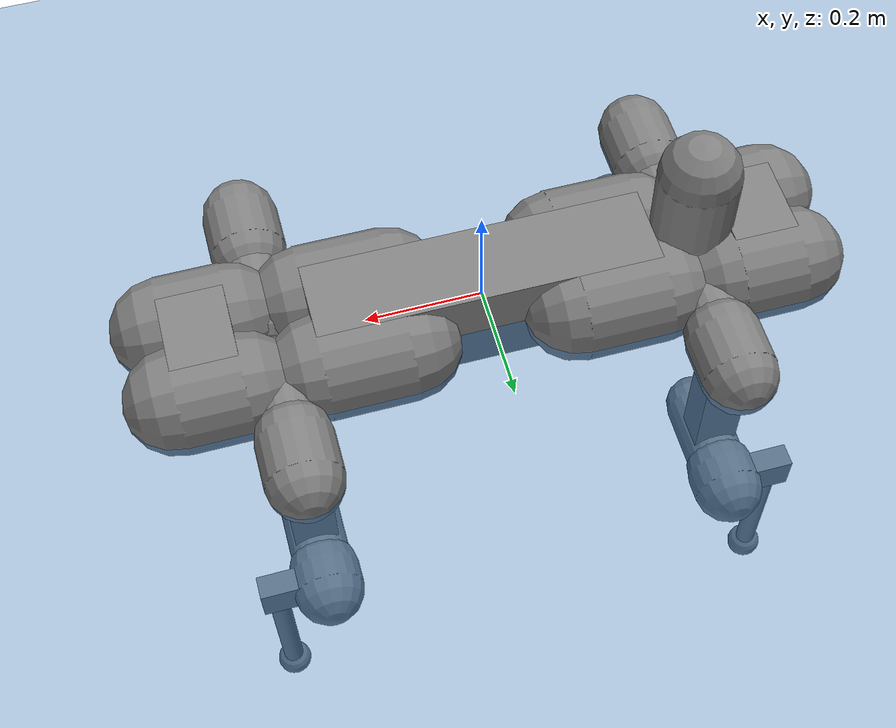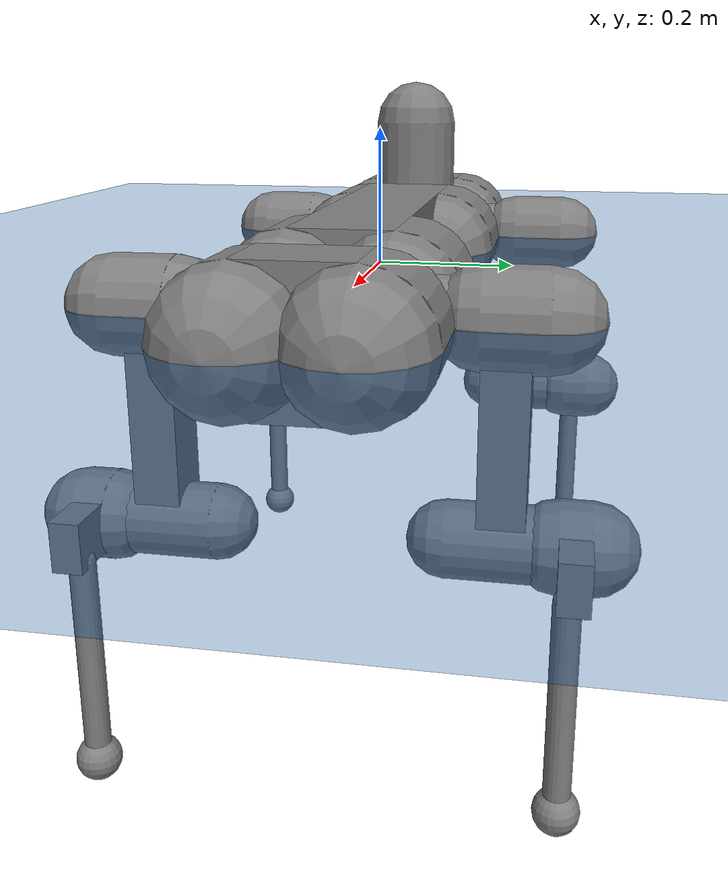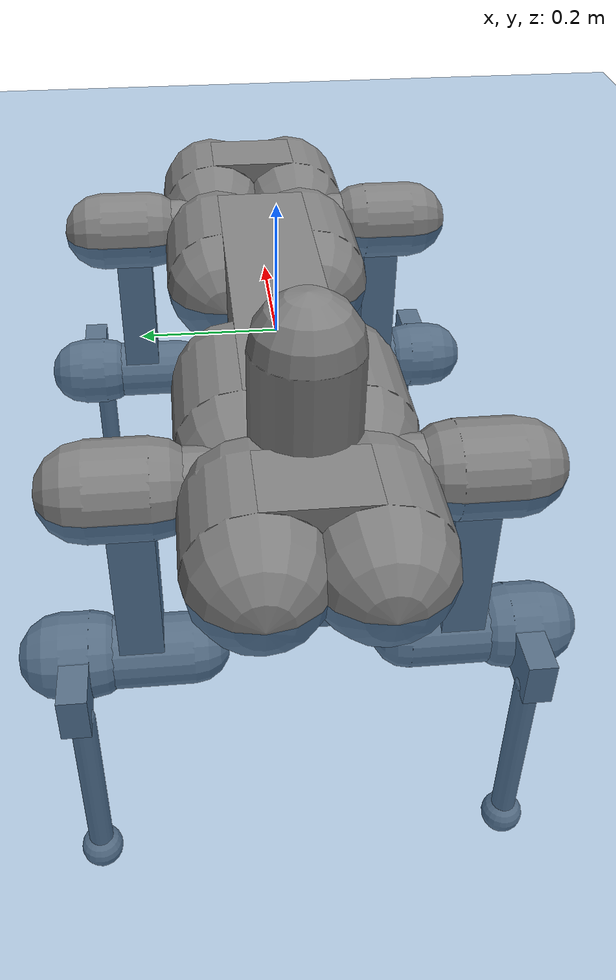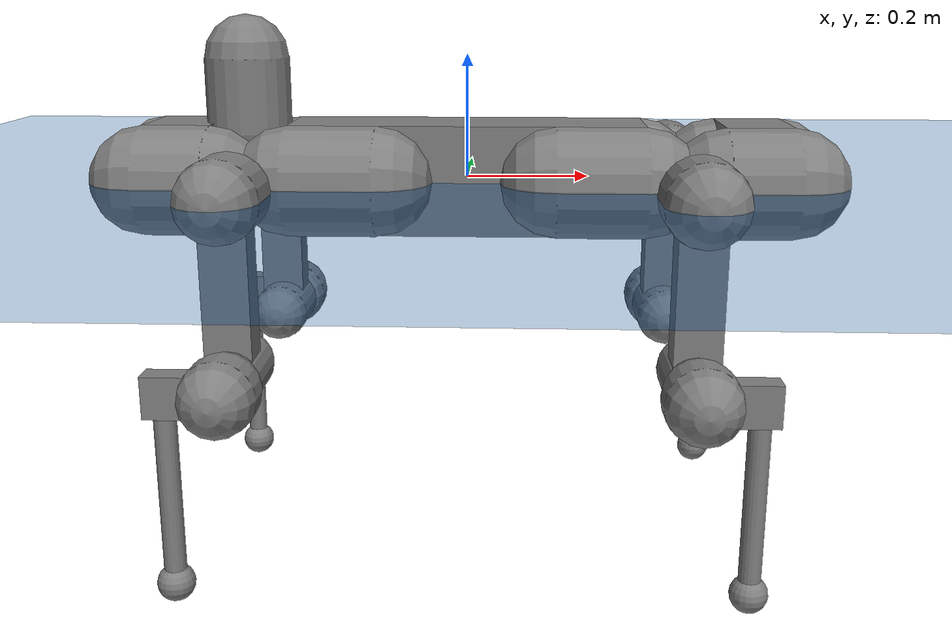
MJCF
<mujoco model="MuJoCo Model">
  <compiler angle="radian"/>

  <option timestep="0.01" solver="CG" iterations="20" ls_iterations="10"/>

  <default>
    <geom friction="1 0.5 0.001"/>
  </default>

  <worldbody>
    <geom name="plane_91" size="5 5 5" type="plane" contype="4" conaffinity="2147483643" friction="0.75 0.375 0.00075" rgba="0 0.3 0.6 1"/>
    <body name="base">
      <inertial pos="-0.00688675 -6.8956e-05 0.00326569" quat="0.00462293 0.712445 0.00382046 0.701703" mass="68.1429" diaginertia="18004.1 18003.9 18000.5"/>
      <joint name="floating_base" type="free"/>
      <geom name="box_1" size="0.29 0.07 0.09" type="box" contype="2" conaffinity="2147483645" friction="0.75 0.375 0.00075"/>
      <geom name="capsule_2" size="0.09 0.0725" pos="0.2175 0.07 0" quat="0.707107 0 0.707107 0" type="capsule" contype="2" conaffinity="2147483645" friction="0.75 0.375 0.00075"/>
      <geom name="capsule_3" size="0.09 0.0725" pos="-0.2175 0.07 0" quat="0.707107 0 0.707107 0" type="capsule" contype="2" conaffinity="2147483645" friction="0.75 0.375 0.00075"/>
      <geom name="capsule_4" size="0.09 0.0725" pos="0.2175 -0.07 0" quat="0.707107 0 0.707107 0" type="capsule" contype="2" conaffinity="2147483645" friction="0.75 0.375 0.00075"/>
      <geom name="capsule_5" size="0.09 0.0725" pos="-0.2175 -0.07 0" quat="0.707107 0 0.707107 0" type="capsule" contype="2" conaffinity="2147483645" friction="0.75 0.375 0.00075"/>
      <geom name="box_11" size="0.055 0.07 0.09" pos="0.4695 0 0" type="box" contype="2" conaffinity="2147483645" friction="0.75 0.375 0.00075"/>
      <geom name="capsule_12" size="0.09 0.055" pos="0.4695 0.07 0" quat="0.707107 0 0.707107 0" type="capsule" contype="2" conaffinity="2147483645" friction="0.75 0.375 0.00075"/>
      <geom name="capsule_13" size="0.09 0.055" pos="0.4695 -0.07 0" quat="0.707107 0 0.707107 0" type="capsule" contype="2" conaffinity="2147483645" friction="0.75 0.375 0.00075"/>
      <geom name="box_17" size="0.055 0.07 0.09" pos="-0.4695 -4.80825e-09 0" quat="-4.37114e-08 0 0 1" type="box" contype="2" conaffinity="2147483645" friction="0.75 0.375 0.00075"/>
      <geom name="capsule_18" size="0.09 0.055" pos="-0.4695 -0.07 0" quat="-3.09086e-08 -0.707107 -3.09086e-08 0.707107" type="capsule" contype="2" conaffinity="2147483645" friction="0.75 0.375 0.00075"/>
      <geom name="capsule_19" size="0.09 0.055" pos="-0.4695 0.07 0" quat="-3.09086e-08 -0.707107 -3.09086e-08 0.707107" type="capsule" contype="2" conaffinity="2147483645" friction="0.75 0.375 0.00075"/>
      <geom name="box_24" size="0.012 0.012 0.005" pos="0.2488 0.00835 0.05128" quat="0.707107 0 0 0.707107" type="box" contype="2" conaffinity="2147483645" friction="0.75 0.375 0.00075"/>
      <geom name="capsule_28" size="0.07 0.06" pos="-0.364 0 0.1335" type="capsule" contype="2" conaffinity="2147483645" friction="0.75 0.375 0.00075"/>
      <body name="RH_HIP" pos="-0.2999 -0.104 0" quat="-1.13133e-08 -4.2222e-08 -0.965926 -0.258819">
        <inertial pos="0.0566606 -0.015294 -0.00829785" quat="0.159528 0.71116 -0.436685 0.52736" mass="2.781" diaginertia="0.0273262 0.0253858 0.00430199"/>
        <joint name="RH_HAA" pos="0 0 0" axis="-1 0 0" limited="true" range="-0.49 0.72" armature="0.06"/>
        <geom name="capsule_78" size="0.05 0.07" pos="0.0599 -0.0119598 -0.006905" quat="0.353553 0.612372 -0.612372 0.353553" type="capsule" contype="2" conaffinity="2147483645" friction="0.75 0.375 0.00075"/>
        <body name="RH_THIGH" pos="0.0599 -0.0725816 -0.041905" quat="-0.183013 0.683013 -0.683013 -0.183013">
          <inertial pos="0.0308147 4.65038e-05 -0.245696" quat="0.818879 -0.0898829 -0.133935 0.550835" mass="3.071" diaginertia="0.206701 0.206498 0.00466666"/>
          <joint name="RH_HFE" pos="0 0 0" axis="-1 0 0" limited="true" range="-9.42478 9.42478" armature="0.06"/>
          <geom name="capsule_80" size="0.065 0.04" pos="0.04 2.38419e-09 0" quat="0.5 0.5 0.5 0.5" type="capsule" contype="2" conaffinity="2147483645" friction="0.75 0.375 0.00075"/>
          <geom name="box_81" size="0.0375 0.03 0.141313" pos="0.03 1.78814e-09 -0.141313" quat="0.707107 0 0 0.707107" type="box" contype="2" conaffinity="2147483645" friction="0.75 0.375 0.00075"/>
          <geom name="capsule_83" size="0.05 0.07" pos="0.0303 5.97835e-09 -0.285" quat="0.707107 0 0.707107 0" type="capsule" contype="2" conaffinity="2147483645" friction="0.75 0.375 0.00075"/>
          <body name="RH_SHANK" pos="0.1003 5.97835e-09 -0.285">
            <inertial pos="0.005462 -0.0612528 -0.0806598" quat="0.99273 -0.118481 -0.0190399 -0.00930062" mass="0.58842" diaginertia="0.0348154 0.0339208 0.00108912"/>
            <joint name="RH_KFE" pos="0 0 0" axis="-1 0 0" limited="true" range="-9.42478 9.42478" armature="0.06"/>
            <geom name="capsule_85" size="0.06 0.02" pos="0.02 1.19209e-09 0" quat="0.5 0.5 0.5 0.5" type="capsule" contype="2" conaffinity="2147483645" friction="0.75 0.375 0.00075"/>
            <geom name="box_86" size="0.057499 0.03375 0.02" pos="0.02 -0.057499 0" quat="0.5 0.5 0.5 0.5" type="box" contype="2" conaffinity="2147483645" friction="0.75 0.375 0.00075"/>
            <geom name="capsule_88" size="0.0175 0.141252" pos="0.01305 -0.08795 -0.168985" quat="0.707107 0 0 0.707107" type="capsule" contype="2" conaffinity="2147483645" friction="0.75 0.375 0.00075"/>
            <geom name="sphere_89" size="0.03" pos="0.01305 -0.08795 -0.31547" quat="0.707107 0 0 0.707107" contype="2" conaffinity="2147483645" friction="0.75 0.375 0.00075"/>
          </body>
        </body>
      </body>
      <body name="LH_HIP" pos="-0.2999 0.104 0" quat="-1.13133e-08 4.2222e-08 0.965926 -0.258819">
        <inertial pos="0.0567633 0.015294 -0.00829784" quat="0.691328 0.139556 -0.534992 0.465159" mass="2.781" diaginertia="0.0273148 0.0253111 0.00438805"/>
        <joint name="LH_HAA" pos="0 0 0" axis="-1 0 0" limited="true" range="-0.72 0.49" armature="0.06"/>
        <geom name="capsule_63" size="0.05 0.07" pos="0.0599 0.0119598 -0.006905" quat="-0.353553 0.612372 0.612372 0.353553" type="capsule" contype="2" conaffinity="2147483645" friction="0.75 0.375 0.00075"/>
        <body name="LH_THIGH" pos="0.0599 0.0725816 -0.041905" quat="0.183013 0.683013 0.683013 -0.183013">
          <inertial pos="0.0308147 4.64952e-05 -0.245696" quat="0.824891 -0.0883635 -0.134943 0.541791" mass="3.071" diaginertia="0.206706 0.206493 0.00466665"/>
          <joint name="LH_HFE" pos="0 0 0" axis="1 0 0" limited="true" range="-9.42478 9.42478" armature="0.06"/>
          <geom name="capsule_65" size="0.065 0.04" pos="0.04 -2.38419e-09 0" quat="0.5 0.5 -0.5 -0.5" type="capsule" contype="2" conaffinity="2147483645" friction="0.75 0.375 0.00075"/>
          <geom name="box_66" size="0.0375 0.03 0.141313" pos="0.03 -1.78814e-09 -0.141313" quat="0.707107 0 0 -0.707107" type="box" contype="2" conaffinity="2147483645" friction="0.75 0.375 0.00075"/>
          <geom name="capsule_68" size="0.05 0.07" pos="0.0303 -5.97835e-09 -0.285" quat="0.707107 0 0.707107 0" type="capsule" contype="2" conaffinity="2147483645" friction="0.75 0.375 0.00075"/>
          <body name="LH_SHANK" pos="0.1003 -5.97835e-09 -0.285">
            <inertial pos="0.005462 0.0612528 -0.0806598" quat="0.99273 0.118481 -0.0190399 0.00930062" mass="0.58842" diaginertia="0.0348154 0.0339208 0.00108912"/>
            <joint name="LH_KFE" pos="0 0 0" axis="1 0 0" limited="true" range="-9.42478 9.42478" armature="0.06"/>
            <geom name="capsule_70" size="0.06 0.02" pos="0.02 -1.19209e-09 0" quat="0.5 0.5 -0.5 -0.5" type="capsule" contype="2" conaffinity="2147483645" friction="0.75 0.375 0.00075"/>
            <geom name="box_71" size="0.057499 0.03375 0.02" pos="0.02 0.057499 0" quat="0.5 0.5 -0.5 -0.5" type="box" contype="2" conaffinity="2147483645" friction="0.75 0.375 0.00075"/>
            <geom name="capsule_73" size="0.0175 0.141252" pos="0.01305 0.08795 -0.168985" quat="0.707107 0 0 -0.707107" type="capsule" contype="2" conaffinity="2147483645" friction="0.75 0.375 0.00075"/>
            <geom name="sphere_74" size="0.03" pos="0.01305 0.08795 -0.31547" quat="0.707107 0 0 -0.707107" contype="2" conaffinity="2147483645" friction="0.75 0.375 0.00075"/>
          </body>
        </body>
      </body>
      <body name="RF_HIP" pos="0.2999 -0.104 0" quat="0.258819 -0.965926 0 0">
        <inertial pos="0.0567633 0.015294 -0.00829784" quat="0.691328 0.139556 -0.534992 0.465159" mass="2.781" diaginertia="0.0273148 0.0253111 0.00438805"/>
        <joint name="RF_HAA" pos="0 0 0" axis="1 0 0" limited="true" range="-0.49 0.72" armature="0.06"/>
        <geom name="capsule_48" size="0.05 0.07" pos="0.0599 0.0119598 -0.006905" quat="-0.353553 0.612372 0.612372 0.353553" type="capsule" contype="2" conaffinity="2147483645" friction="0.75 0.375 0.00075"/>
        <body name="RF_THIGH" pos="0.0599 0.0725816 -0.041905" quat="0.183013 0.683013 0.683013 -0.183013">
          <inertial pos="0.0308147 4.65038e-05 -0.245696" quat="0.824891 -0.0883635 -0.134943 0.541791" mass="3.071" diaginertia="0.206706 0.206493 0.00466665"/>
          <joint name="RF_HFE" pos="0 0 0" axis="-1 0 0" limited="true" range="-9.42478 9.42478" armature="0.06"/>
          <geom name="capsule_50" size="0.065 0.04" pos="0.04 2.38419e-09 0" quat="0.5 0.5 0.5 0.5" type="capsule" contype="2" conaffinity="2147483645" friction="0.75 0.375 0.00075"/>
          <geom name="box_51" size="0.0375 0.03 0.141313" pos="0.03 1.78814e-09 -0.141313" quat="0.707107 0 0 0.707107" type="box" contype="2" conaffinity="2147483645" friction="0.75 0.375 0.00075"/>
          <geom name="capsule_53" size="0.05 0.07" pos="0.0303 5.97835e-09 -0.285" quat="0.707107 0 0.707107 0" type="capsule" contype="2" conaffinity="2147483645" friction="0.75 0.375 0.00075"/>
          <body name="RF_SHANK" pos="0.1003 5.97835e-09 -0.285">
            <inertial pos="0.005462 0.0612528 -0.0806598" quat="0.99273 0.118481 -0.0190399 0.00930068" mass="0.58842" diaginertia="0.0348154 0.0339208 0.00108912"/>
            <joint name="RF_KFE" pos="0 0 0" axis="-1 0 0" limited="true" range="-9.42478 9.42478" armature="0.06"/>
            <geom name="capsule_55" size="0.06 0.02" pos="0.02 1.19209e-09 0" quat="0.5 0.5 0.5 0.5" type="capsule" contype="2" conaffinity="2147483645" friction="0.75 0.375 0.00075"/>
            <geom name="box_56" size="0.057499 0.03375 0.02" pos="0.02 0.057499 0" quat="0.5 0.5 0.5 0.5" type="box" contype="2" conaffinity="2147483645" friction="0.75 0.375 0.00075"/>
            <geom name="capsule_58" size="0.0175 0.141252" pos="0.01305 0.08795 -0.168985" quat="0.707107 0 0 0.707107" type="capsule" contype="2" conaffinity="2147483645" friction="0.75 0.375 0.00075"/>
            <geom name="sphere_59" size="0.03" pos="0.01305 0.08795 -0.31547" quat="0.707107 0 0 0.707107" contype="2" conaffinity="2147483645" friction="0.75 0.375 0.00075"/>
          </body>
        </body>
      </body>
      <body name="LF_HIP" pos="0.2999 0.104 0" quat="0.258819 0.965926 0 0">
        <inertial pos="0.0566606 -0.015294 -0.00829784" quat="0.159528 0.71116 -0.436685 0.52736" mass="2.781" diaginertia="0.0273262 0.0253858 0.00430199"/>
        <joint name="LF_HAA" pos="0 0 0" axis="1 0 0" limited="true" range="-0.72 0.49" armature="0.06"/>
        <geom name="capsule_33" size="0.05 0.07" pos="0.0599 -0.0119598 -0.006905" quat="-0.353553 -0.612372 0.612372 -0.353553" type="capsule" contype="2" conaffinity="2147483645" friction="0.75 0.375 0.00075"/>
        <body name="LF_THIGH" pos="0.0599 -0.0725816 -0.041905" quat="0.183013 -0.683013 0.683013 0.183013">
          <inertial pos="0.0308147 4.64952e-05 -0.245696" quat="0.818879 -0.0898829 -0.133935 0.550835" mass="3.071" diaginertia="0.206701 0.206498 0.00466666"/>
          <joint name="LF_HFE" pos="0 0 0" axis="1 0 0" limited="true" range="-9.42478 9.42478" armature="0.06"/>
          <geom name="capsule_35" size="0.065 0.04" pos="0.04 -2.38419e-09 0" quat="0.5 0.5 -0.5 -0.5" type="capsule" contype="2" conaffinity="2147483645" friction="0.75 0.375 0.00075"/>
          <geom name="box_36" size="0.0375 0.03 0.141313" pos="0.03 -1.78814e-09 -0.141313" quat="0.707107 0 0 -0.707107" type="box" contype="2" conaffinity="2147483645" friction="0.75 0.375 0.00075"/>
          <geom name="capsule_38" size="0.05 0.07" pos="0.0303 -5.97835e-09 -0.285" quat="0.707107 0 0.707107 0" type="capsule" contype="2" conaffinity="2147483645" friction="0.75 0.375 0.00075"/>
          <body name="LF_SHANK" pos="0.1003 -5.97835e-09 -0.285">
            <inertial pos="0.005462 -0.0612528 -0.0806598" quat="0.99273 -0.118481 -0.0190399 -0.00930068" mass="0.58842" diaginertia="0.0348154 0.0339208 0.00108912"/>
            <joint name="LF_KFE" pos="0 0 0" axis="1 0 0" limited="true" range="-9.42478 9.42478" armature="0.06"/>
            <geom name="capsule_40" size="0.06 0.02" pos="0.02 -1.19209e-09 0" quat="0.5 0.5 -0.5 -0.5" type="capsule" contype="2" conaffinity="2147483645" friction="0.75 0.375 0.00075"/>
            <geom name="box_41" size="0.057499 0.03375 0.02" pos="0.02 -0.057499 0" quat="0.5 0.5 -0.5 -0.5" type="box" contype="2" conaffinity="2147483645" friction="0.75 0.375 0.00075"/>
            <geom name="capsule_43" size="0.0175 0.141252" pos="0.01305 -0.08795 -0.168985" quat="0.707107 0 0 -0.707107" type="capsule" contype="2" conaffinity="2147483645" friction="0.75 0.375 0.00075"/>
            <geom name="sphere_44" size="0.03" pos="0.01305 -0.08795 -0.31547" quat="0.707107 0 0 -0.707107" contype="2" conaffinity="2147483645" friction="0.75 0.375 0.00075"/>
          </body>
        </body>
      </body>
    </body>
  </worldbody>

  <actuator>
    <general joint="RH_HAA" forcerange="-1000000 1000000" biastype="affine" gainprm="150" biasprm="0 -150 -5"/>
    <general joint="RH_HFE" forcerange="-1000000 1000000" biastype="affine" gainprm="150" biasprm="0 -150 -5"/>
    <general joint="RH_KFE" forcerange="-1000000 1000000" biastype="affine" gainprm="150" biasprm="0 -150 -5"/>
    <general joint="LH_HAA" forcerange="-1000000 1000000" biastype="affine" gainprm="150" biasprm="0 -150 -5"/>
    <general joint="LH_HFE" forcerange="-1000000 1000000" biastype="affine" gainprm="150" biasprm="0 -150 -5"/>
    <general joint="LH_KFE" forcerange="-1000000 1000000" biastype="affine" gainprm="150" biasprm="0 -150 -5"/>
    <general joint="RF_HAA" forcerange="-1000000 1000000" biastype="affine" gainprm="150" biasprm="0 -150 -5"/>
    <general joint="RF_HFE" forcerange="-1000000 1000000" biastype="affine" gainprm="150" biasprm="0 -150 -5"/>
    <general joint="RF_KFE" forcerange="-1000000 1000000" biastype="affine" gainprm="150" biasprm="0 -150 -5"/>
    <general joint="LF_HAA" forcerange="-1000000 1000000" biastype="affine" gainprm="150" biasprm="0 -150 -5"/>
    <general joint="LF_HFE" forcerange="-1000000 1000000" biastype="affine" gainprm="150" biasprm="0 -150 -5"/>
    <general joint="LF_KFE" forcerange="-1000000 1000000" biastype="affine" gainprm="150" biasprm="0 -150 -5"/>
  </actuator>
</mujoco>
